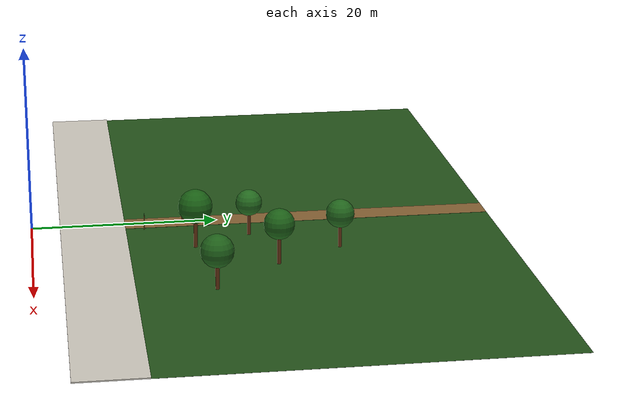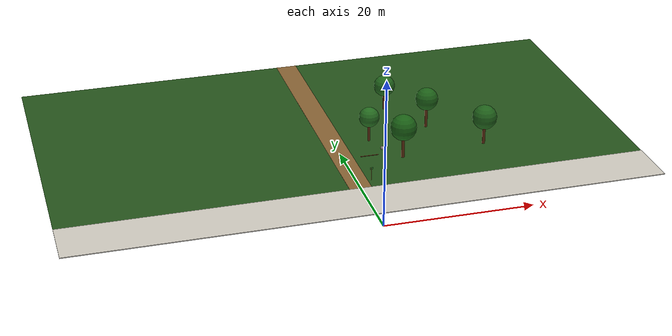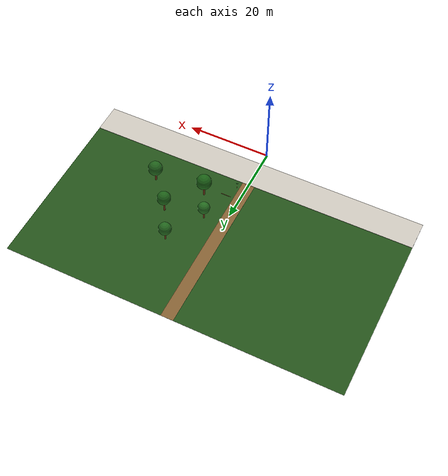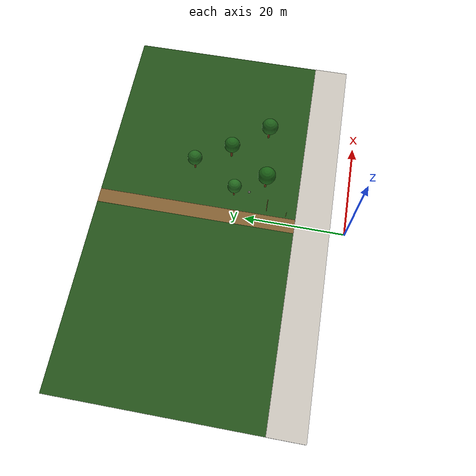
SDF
<sdf version="1.9">
 <world name="smartnav_world">
  <model name="sidewalk">
   <static>true</static>
   <pose>0 6.5 0.06 0 0 0</pose>
   <link name="link">
    <collision name="col"><geometry><box><size>80 7 0.12</size></box></geometry></collision>
    <visual name="vis">
     <geometry><box><size>80 7 0.12</size></box></geometry>
     <material><ambient>0.76 0.74 0.70 1</ambient><diffuse>0.80 0.78 0.74 1</diffuse></material>
    </visual>
   </link>
  </model>
  <model name="forest_floor">
   <static>true</static>
   <pose>0 30 0.005 0 0 0</pose>
   <link name="link">
    <visual name="vis">
     <geometry><box><size>80 40 0.01</size></box></geometry>
     <material><ambient>0.12 0.28 0.08 1</ambient><diffuse>0.14 0.32 0.10 1</diffuse></material>
    </visual>
   </link>
  </model>
  <model name="forest_path">
   <static>true</static>
   <pose>0 30 0.01 0 0 0</pose>
   <link name="link">
    <collision name="col"><geometry><box><size>3 40 0.02</size></box></geometry></collision>
    <visual name="vis">
     <geometry><box><size>3 40 0.02</size></box></geometry>
     <material><ambient>0.48 0.35 0.18 1</ambient><diffuse>0.52 0.38 0.20 1</diffuse></material>
    </visual>
   </link>
  </model>
  <model name="tree_02">
   <static>true</static>
   <pose>8 17 0 0 0 0</pose>
   <link name="trunk">
    <collision name="col">
     <geometry><cylinder><radius>0.22</radius><length>3.5</length></cylinder></geometry>
    </collision>
    <visual name="v">
     <pose>0 0 1.75 0 0 0</pose>
     <geometry><cylinder><radius>0.22</radius><length>3.5</length></cylinder></geometry>
     <material><ambient>0.32 0.16 0.05 1</ambient><diffuse>0.38 0.20 0.07 1</diffuse></material>
    </visual>
    <visual name="c">
     <pose>0 0 4.5 0 0 0</pose>
     <geometry><sphere><radius>1.8</radius></sphere></geometry>
     <material><ambient>0.08 0.32 0.06 1</ambient><diffuse>0.10 0.38 0.08 1</diffuse></material>
    </visual>
   </link>
  </model>
  <model name="tree_04">
   <static>true</static>
   <pose>5 23 0 0 0 0</pose>
   <link name="trunk">
    <collision name="col">
     <geometry><cylinder><radius>0.18</radius><length>3.0</length></cylinder></geometry>
    </collision>
    <visual name="v">
     <pose>0 0 1.5 0 0 0</pose>
     <geometry><cylinder><radius>0.18</radius><length>3.0</length></cylinder></geometry>
     <material><ambient>0.35 0.17 0.06 1</ambient><diffuse>0.40 0.20 0.08 1</diffuse></material>
    </visual>
    <visual name="c">
     <pose>0 0 3.6 0 0 0</pose>
     <geometry><sphere><radius>1.4</radius></sphere></geometry>
     <material><ambient>0.12 0.38 0.10 1</ambient><diffuse>0.14 0.42 0.12 1</diffuse></material>
    </visual>
   </link>
  </model>
  <model name="tree_06">
   <static>true</static>
   <pose>14 25 0 0 0 0</pose>
   <link name="trunk">
    <collision name="col">
     <geometry><cylinder><radius>0.20</radius><length>3.5</length></cylinder></geometry>
    </collision>
    <visual name="v">
     <pose>0 0 1.75 0 0 0</pose>
     <geometry><cylinder><radius>0.20</radius><length>3.5</length></cylinder></geometry>
     <material><ambient>0.33 0.16 0.05 1</ambient><diffuse>0.38 0.19 0.07 1</diffuse></material>
    </visual>
    <visual name="c">
     <pose>0 0 4.3 0 0 0</pose>
     <geometry><sphere><radius>1.6</radius></sphere></geometry>
     <material><ambient>0.09 0.34 0.07 1</ambient><diffuse>0.11 0.38 0.09 1</diffuse></material>
    </visual>
   </link>
  </model>
  <model name="tree_08">
   <static>true</static>
   <pose>10 32 0 0 0 0</pose>
   <link name="trunk">
    <collision name="col">
     <geometry><cylinder><radius>0.19</radius><length>3.0</length></cylinder></geometry>
    </collision>
    <visual name="v">
     <pose>0 0 1.5 0 0 0</pose>
     <geometry><cylinder><radius>0.19</radius><length>3.0</length></cylinder></geometry>
     <material><ambient>0.34 0.17 0.06 1</ambient><diffuse>0.39 0.20 0.08 1</diffuse></material>
    </visual>
    <visual name="c">
     <pose>0 0 3.7 0 0 0</pose>
     <geometry><sphere><radius>1.5</radius></sphere></geometry>
     <material><ambient>0.11 0.36 0.09 1</ambient><diffuse>0.13 0.40 0.11 1</diffuse></material>
    </visual>
   </link>
  </model>
  <model name="tree_10">
   <static>true</static>
   <pose>20 18 0 0 0 0</pose>
   <link name="trunk">
    <collision name="col">
     <geometry><cylinder><radius>0.21</radius><length>3.2</length></cylinder></geometry>
    </collision>
    <visual name="v">
     <pose>0 0 1.6 0 0 0</pose>
     <geometry><cylinder><radius>0.21</radius><length>3.2</length></cylinder></geometry>
     <material><ambient>0.33 0.16 0.05 1</ambient><diffuse>0.38 0.19 0.07 1</diffuse></material>
    </visual>
    <visual name="c">
     <pose>0 0 4.0 0 0 0</pose>
     <geometry><sphere><radius>1.7</radius></sphere></geometry>
     <material><ambient>0.10 0.33 0.08 1</ambient><diffuse>0.12 0.38 0.10 1</diffuse></material>
    </visual>
   </link>
  </model>
  <model name="branch_low_1">
   <static>true</static>
   <pose>3 16 1.45 0 1.5708 0</pose>
   <link name="link">
    <collision name="col">
     <geometry><cylinder><radius>0.05</radius><length>2.5</length></cylinder></geometry>
    </collision>
    <visual name="vis">
     <geometry><cylinder><radius>0.05</radius><length>2.5</length></cylinder></geometry>
     <material><ambient>0.38 0.19 0.07 1</ambient><diffuse>0.42 0.22 0.09 1</diffuse></material>
    </visual>
   </link>
  </model>
  <model name="rock_2">
   <static>true</static>
   <pose>6 20 0.18 0.2 0.1 0</pose>
   <link name="link">
    <collision name="col"><geometry><sphere><radius>0.25</radius></sphere></geometry></collision>
    <visual name="vis">
     <geometry><sphere><radius>0.25</radius></sphere></geometry>
     <material><ambient>0.48 0.46 0.43 1</ambient><diffuse>0.52 0.50 0.47 1</diffuse></material>
    </visual>
   </link>
  </model>
  <model name="forest_sign">
   <static>true</static>
   <pose>2 12 0 0 0 0</pose>
   <link name="link">
    <collision name="col">
     <geometry><cylinder><radius>0.05</radius><length>1.8</length></cylinder></geometry>
    </collision>
    <visual name="pole">
     <pose>0 0 0.9 0 0 0</pose>
     <geometry><cylinder><radius>0.05</radius><length>1.8</length></cylinder></geometry>
     <material><ambient>0.60 0.50 0.20 1</ambient><diffuse>0.65 0.55 0.22 1</diffuse></material>
    </visual>
    <visual name="sign_panel">
     <pose>0 0 1.7 0 0 0</pose>
     <geometry><box><size>0.4 0.04 0.3</size></box></geometry>
     <material><ambient>0.15 0.45 0.15 1</ambient><diffuse>0.18 0.50 0.18 1</diffuse></material>
    </visual>
   </link>
  </model>
 </world>
</sdf>
